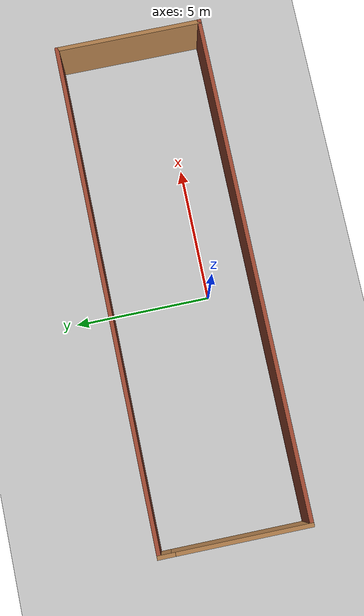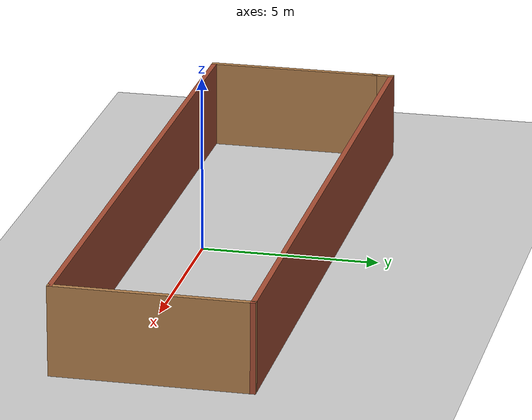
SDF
<sdf version="1.7">
 <world name="world">
  <plugin name="gazebo_ros_state" filename="libgazebo_ros_state.so">
   <ros>
    <namespace>/demo</namespace>
    <remapping>model_states:=model_states_demo</remapping>
    <remapping>link_states:=link_states_demo</remapping>
   </ros>
   <update_rate>1.0</update_rate>
  </plugin>
  <gravity>0 0 -9.8</gravity>
  <physics default="0" name="default_physics" type="ode">
   <max_step_size>0.001</max_step_size>
   <real_time_factor>1</real_time_factor>
   <real_time_update_rate>1000</real_time_update_rate>
  </physics>
  <sensor><noise type="gaussian"><mean>0.0</mean><stddev>0.01</stddev></noise></sensor>
  <surface>
   <friction><ode><mu>0.9</mu><mu2>0.9</mu2></ode></friction>
   <contact><ode><kp>100000.0</kp><kd>1.0</kd></ode></contact>
  </surface>
  <light name="sun" type="directional">
   <pose>0 0 10 0 -0 0</pose>
   <diffuse>0.9 0.85 0.8 1</diffuse>
   <specular>0.3 0.3 0.3 1</specular>
   <attenuation>
    <range>1000</range>
    <constant>0.8</constant>
    <linear>0.01</linear>
    <quadratic>0.001</quadratic>
   </attenuation>
   <direction>-0.3 0.2 -0.9</direction>
   <spot><inner_angle>0</inner_angle><outer_angle>0</outer_angle><falloff>0</falloff></spot>
  </light>
  <model name="ground_plane">
   <static>1</static>
   <link name="link">
    <collision name="collision">
     <geometry><plane><normal>0 0 1</normal><size>100 100</size></plane></geometry>
     <surface><friction><ode><mu>0.8</mu><mu2>0.6</mu2></ode></friction></surface>
    </collision>
    <visual name="visual">
     <geometry><plane><normal>0 0 1</normal><size>100 100</size></plane></geometry>
     <material>
      <script><uri>file://media/materials/scripts/gazebo.material</uri><name>Gazebo/Concrete</name></script>
     </material>
    </visual>
   </link>
  </model>
  <gravity>0 0 -9.81</gravity>
  <magnetic_field>6e-06 2.3e-05 -4.2e-05</magnetic_field>
  <atmosphere type="adiabatic"/>
  <physics type="ode">
   <max_step_size>0.002</max_step_size>
   <real_time_factor>1</real_time_factor>
   <real_time_update_rate>2000</real_time_update_rate>
  </physics>
  <scene><ambient>0.6 0.6 0.6 1</ambient><background>0.8 0.8 0.8 1</background><shadows>1</shadows></scene>
  <audio><device>default</device></audio>
  <wind><linear_velocity>0.0 0.0 0.0</linear_velocity></wind>
  <spherical_coordinates>
   <surface_model>EARTH_WGS84</surface_model>
   <latitude_deg>37.7749</latitude_deg>
   <longitude_deg>-122.4194</longitude_deg>
   <elevation>30</elevation>
   <heading_deg>0</heading_deg>
  </spherical_coordinates>
  <model name="flood_4x15">
   <pose>0.5104 0.97805 0 0 -0 0</pose>
   <link name="Wall_15">
    <collision name="Wall_15_Collision">
     <geometry><box><size>5 0.15 2.5</size></box></geometry>
     <pose>0 0 1.25 0 -0 0</pose>
     <surface><friction><ode><mu>0.8</mu><mu2>0.8</mu2></ode></friction></surface>
    </collision>
    <visual name="Wall_15_Visual">
     <pose>0 0 1.25 0 -0 0</pose>
     <geometry><box><size>5 0.15 2.5</size></box></geometry>
     <material>
      <script><uri>file://media/materials/scripts/gazebo.material</uri><name>Gazebo/Wood</name></script>
      <ambient>0.7 0.7 0.7 1</ambient>
      <diffuse>0.8 0.8 0.8 1</diffuse>
      <specular>0.1 0.1 0.1 1</specular>
     </material>
    </visual>
    <pose>-9.3 -0.25 0 0 -0 -1.5708</pose>
   </link>
   <link name="Wall_18">
    <collision name="Wall_18_Collision">
     <geometry><box><size>18.75 0.15 2.5</size></box></geometry>
     <pose>0 0 1.25 0 -0 0</pose>
    </collision>
    <visual name="Wall_18_Visual">
     <pose>0 0 1.25 0 -0 0</pose>
     <geometry><box><size>18.75 0.15 2.5</size></box></geometry>
     <material>
      <script><uri>file://media/materials/scripts/gazebo.material</uri><name>Gazebo/Bricks</name></script>
      <ambient>1 1 1 1</ambient>
     </material>
    </visual>
    <pose>0 -2.675 0 0 -0 0</pose>
   </link>
   <link name="Wall_19">
    <collision name="Wall_19_Collision">
     <geometry><box><size>5.5 0.15 2.5</size></box></geometry>
     <pose>0 0 1.25 0 -0 0</pose>
    </collision>
    <visual name="Wall_19_Visual">
     <pose>0 0 1.25 0 -0 0</pose>
     <geometry><box><size>5.5 0.15 2.5</size></box></geometry>
     <material>
      <script><uri>file://media/materials/scripts/gazebo.material</uri><name>Gazebo/Wood</name></script>
      <ambient>1 1 1 1</ambient>
     </material>
    </visual>
    <pose>9.3 0 0 0 -0 1.5708</pose>
   </link>
   <link name="Wall_20">
    <collision name="Wall_20_Collision">
     <geometry><box><size>18.75 0.15 2.5</size></box></geometry>
     <pose>0 0 1.25 0 -0 0</pose>
    </collision>
    <visual name="Wall_20_Visual">
     <pose>0 0 1.25 0 -0 0</pose>
     <geometry><box><size>18.75 0.15 2.5</size></box></geometry>
     <material>
      <script><uri>file://media/materials/scripts/gazebo.material</uri><name>Gazebo/Bricks</name></script>
      <ambient>1 1 1 1</ambient>
     </material>
    </visual>
    <pose>0 2.675 0 0 -0 3.14159</pose>
   </link>
   <link name="Wall_21">
    <collision name="Wall_21_Collision">
     <geometry><box><size>0.65 0.15 2.5</size></box></geometry>
     <pose>0 0 1.25 0 -0 0</pose>
    </collision>
    <visual name="Wall_21_Visual">
     <pose>0 0 1.25 0 -0 0</pose>
     <geometry><box><size>0.65 0.15 2.5</size></box></geometry>
     <material>
      <script><uri>file://media/materials/scripts/gazebo.material</uri><name>Gazebo/Wood</name></script>
      <ambient>1 1 1 1</ambient>
     </material>
    </visual>
    <pose>-9.3 2.425 0 0 -0 -1.5708</pose>
   </link>
   <static>1</static>
  </model>
 </world>
</sdf>
